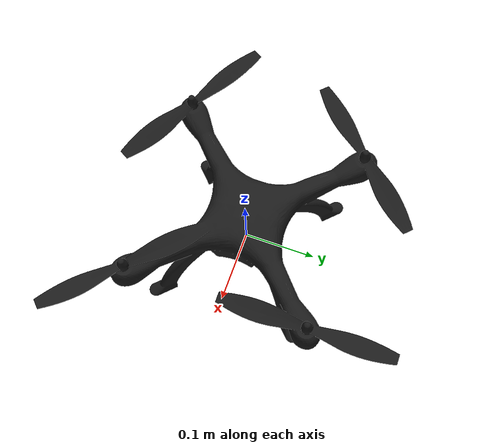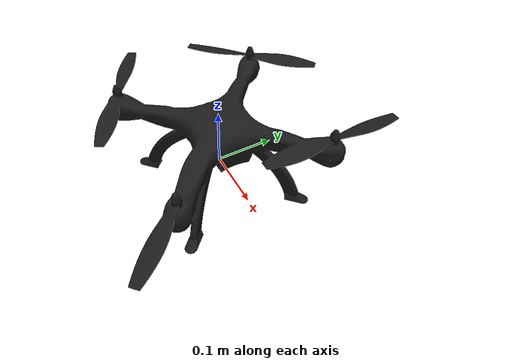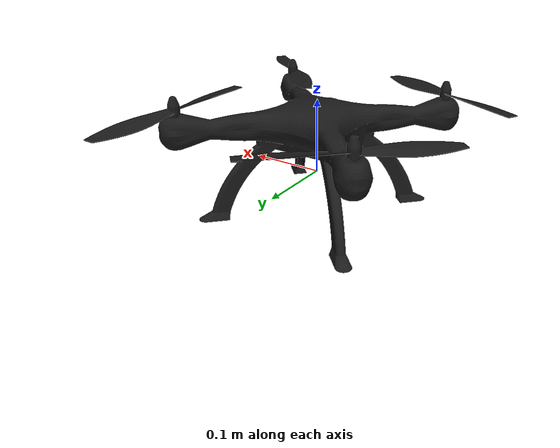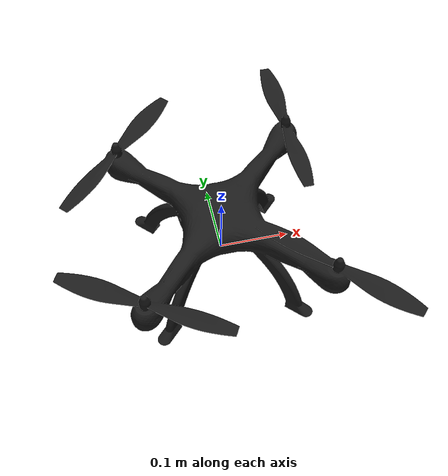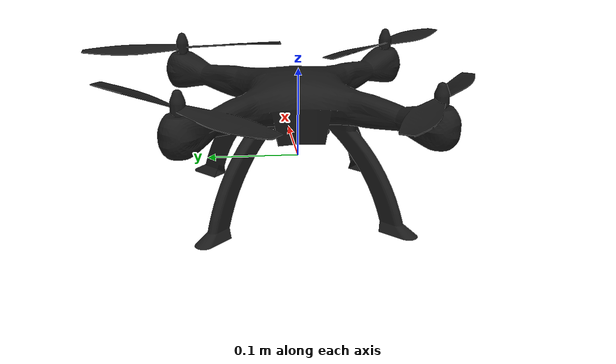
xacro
<?xml version="1.0"?>
<robot
  xmlns:xacro="http://www.ros.org/wiki/xacro"
  name="quad">

  <xacro:include filename="$(find gazebo_test)/urdf/common.xacro" />
  <xacro:include filename="$(find gazebo_test)/urdf/gazebo.urdf.xacro" />

  <material name="Grey1">
    <color rgba="0.1 0.1 0.1 1" />
  </material>

  <link name="base_link" />

  <link name="quad">
    <inertial>
      <origin xyz="0 0 0" rpy="0 0 0"/>
      <mass value="0.8"/>
      <xacro:cylinder_inertia_def radius="0.2" length="0.1" mass="0.8" />
    </inertial>

    <visual>
      <origin
        xyz="0 0 0.03"
        rpy="0 0 0" />
      <geometry>
        <mesh
          filename="package://gazebo_test/meshes/quad.stl" />
      </geometry>
      <material name="Grey1" />
    </visual>

    <collision>
      <geometry>
        <box size="0.4 0.4 0.1" />
      </geometry>
    </collision>
  </link>

  <joint
    name="base_fixed_joint"
    type="fixed">
    <origin
      xyz="0 0 0"
      rpy="0 0 0" />
    <child
      link="quad" />
    <parent
      link="base_link" />
    <axis
      xyz="0 0 0" />
  </joint>

  <gazebo reference="quad">
    <material>Gazebo/Grey</material>
    <mu1>0.2</mu1>
    <mu2>0.2</mu2>
  </gazebo>

  <gazebo>
    <plugin name="quad_controller" filename="libgazebo_ros_quad.so">
      <robotNamespace>quad</robotNamespace>
      <bodyName>quad</bodyName>
      <topicName>force</topicName>
    </plugin>
  </gazebo>

</robot>
